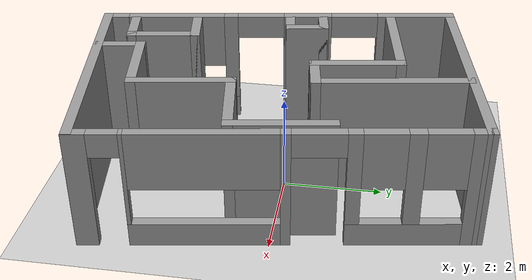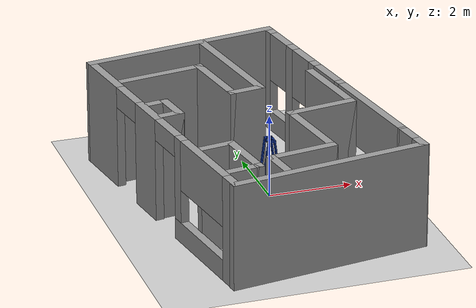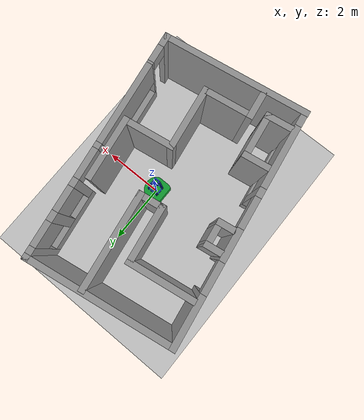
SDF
<sdf version="1.4">
 <world name="default">
  <light name="sun" type="directional">
   <pose>0 0 10 0 -0 0</pose>
   <diffuse>0.8 0.8 0.8 1</diffuse>
   <specular>0.2 0.2 0.2 1</specular>
   <attenuation>
    <range>1000</range>
    <constant>0.9</constant>
    <linear>0.01</linear>
    <quadratic>0.001</quadratic>
   </attenuation>
   <direction>-0.5 0.1 -0.9</direction>
  </light>
  <model name="ground_plane">
   <static>1</static>
   <link name="link">
    <collision name="collision">
     <geometry><plane><normal>0 0 1</normal><size>100 100</size></plane></geometry>
     <surface><friction><ode><mu>100</mu><mu2>50</mu2></ode></friction></surface>
    </collision>
    <visual name="visual">
     <cast_shadows>0</cast_shadows>
     <geometry><plane><normal>0 0 1</normal><size>100 100</size></plane></geometry>
     <material>
      <script><uri>file://media/materials/scripts/gazebo.material</uri><name>Gazebo/Grey</name></script>
     </material>
    </visual>
    <velocity_decay><linear>0</linear><angular>0</angular></velocity_decay>
   </link>
  </model>
  <physics type="ode">
   <max_step_size>0.001</max_step_size>
   <real_time_factor>1</real_time_factor>
   <real_time_update_rate>1000</real_time_update_rate>
   <gravity>0 0 -9.8</gravity>
  </physics>
  <scene><ambient>0.4 0.4 0.4 1</ambient><background>0.7 0.7 0.7 1</background><shadows>1</shadows></scene>
  <spherical_coordinates>
   <surface_model>EARTH_WGS84</surface_model>
   <latitude_deg>0</latitude_deg>
   <longitude_deg>0</longitude_deg>
   <elevation>0</elevation>
   <heading_deg>0</heading_deg>
  </spherical_coordinates>
  <model name="mild">
   <link name="base_link">
    <inertial>
     <mass>5.67</mass>
     <inertia><ixx>0.07</ixx><iyy>0.08</iyy><izz>0.1</izz><ixy>0</ixy><ixz>0</ixz><iyz>0</iyz></inertia>
    </inertial>
    <collision name="collision">
     <geometry><cylinder><radius>0.38</radius><length>0.485</length></cylinder></geometry>
    </collision>
    <collision name="castor_collision">
     <pose>-0.2 0 -0.12 0 -0 0</pose>
     <geometry><sphere><radius>0.04</radius></sphere></geometry>
     <surface><friction><ode><mu>0</mu><mu2>0</mu2><slip1>1</slip1><slip2>1</slip2></ode></friction></surface>
    </collision>
    <visual name="visual">
     <pose>0 0 -0.2 0 0 -1.5708</pose>
     <geometry><mesh><uri>model://mild/meshes/mild.dae</uri></mesh></geometry>
    </visual>
    <sensor name="laser" type="ray">
     <pose>0.39 0 -0.12 0 -0 0</pose>
     <visualize>1</visualize>
     <ray>
      <scan>
       <horizontal>
        <samples>180</samples>
        <resolution>1</resolution>
        <min_angle>-1.5708</min_angle>
        <max_angle>1.5708</max_angle>
       </horizontal>
      </scan>
      <range><min>0.08</min><max>10</max><resolution>0.01</resolution></range>
     </ray>
     <plugin name="laser_controller" filename="libgazebo_ros_laser.so">
      <gaussianNoise>0.005</gaussianNoise>
      <alwaysOn>1</alwaysOn>
      <updateRate>20</updateRate>
      <topicName>scan</topicName>
      <frameName>base_laser</frameName>
     </plugin>
     <update_rate>20</update_rate>
    </sensor>
    <velocity_decay><linear>0</linear><angular>0</angular></velocity_decay>
   </link>
   <pose>-0 -3e-06 0.2425 -0 -0 -0</pose>
   <static>0</static>
  </model>
  <model name="room_experiments">
   <link name="Wall_0">
    <pose>-6.64556 0.829551 0 0 -0 0</pose>
    <visual name="Wall_0_Visual_0">
     <pose>-3.535 0 1.25 0 -0 0</pose>
     <geometry><box><size>0.540007 0.2 2.5</size></box></geometry>
     <material>
      <script><uri>file://media/materials/scripts/gazebo.material</uri><name>Gazebo/Grey</name></script>
     </material>
    </visual>
    <collision name="Wall_0_Collision_0">
     <geometry><box><size>0.540007 0.2 2.5</size></box></geometry>
     <pose>-3.535 0 1.25 0 -0 0</pose>
    </collision>
    <visual name="Wall_0_Visual_1">
     <pose>0.625003 0 1.25 0 -0 0</pose>
     <geometry><box><size>1.04 0.2 2.5</size></box></geometry>
     <material>
      <script><uri>file://media/materials/scripts/gazebo.material</uri><name>Gazebo/Grey</name></script>
     </material>
    </visual>
    <collision name="Wall_0_Collision_1">
     <geometry><box><size>1.04 0.2 2.5</size></box></geometry>
     <pose>0.625003 0 1.25 0 -0 0</pose>
    </collision>
    <visual name="Wall_0_Visual_2">
     <pose>2.975 0 1.25 0 -0 0</pose>
     <geometry><box><size>1.66 0.2 2.5</size></box></geometry>
     <material>
      <script><uri>file://media/materials/scripts/gazebo.material</uri><name>Gazebo/Grey</name></script>
     </material>
    </visual>
    <collision name="Wall_0_Collision_2">
     <geometry><box><size>1.66 0.2 2.5</size></box></geometry>
     <pose>2.975 0 1.25 0 -0 0</pose>
    </collision>
    <visual name="Wall_0_Visual_3">
     <pose>-2.08 0 0.25 0 -0 0</pose>
     <geometry><box><size>2.37 0.2 0.5</size></box></geometry>
     <material>
      <script><uri>file://media/materials/scripts/gazebo.material</uri><name>Gazebo/Grey</name></script>
     </material>
    </visual>
    <collision name="Wall_0_Collision_3">
     <geometry><box><size>2.37 0.2 0.5</size></box></geometry>
     <pose>-2.08 0 0.25 0 -0 0</pose>
    </collision>
    <visual name="Wall_0_Visual_4">
     <pose>-1.045 0 1.5 0 -0 0</pose>
     <geometry><box><size>0.3 0.2 2</size></box></geometry>
     <material>
      <script><uri>file://media/materials/scripts/gazebo.material</uri><name>Gazebo/Grey</name></script>
     </material>
    </visual>
    <collision name="Wall_0_Collision_4">
     <geometry><box><size>0.3 0.2 2</size></box></geometry>
     <pose>-1.045 0 1.5 0 -0 0</pose>
    </collision>
    <visual name="Wall_0_Visual_5">
     <pose>-2.23 0 1.9 0 -0 0</pose>
     <geometry><box><size>2.07 0.2 1.2</size></box></geometry>
     <material>
      <script><uri>file://media/materials/scripts/gazebo.material</uri><name>Gazebo/Grey</name></script>
     </material>
    </visual>
    <collision name="Wall_0_Collision_5">
     <geometry><box><size>2.07 0.2 1.2</size></box></geometry>
     <pose>-2.23 0 1.9 0 -0 0</pose>
    </collision>
    <visual name="Wall_0_Visual_6">
     <pose>1.645 0 2.25 0 -0 0</pose>
     <geometry><box><size>1 0.2 0.5</size></box></geometry>
     <material>
      <script><uri>file://media/materials/scripts/gazebo.material</uri><name>Gazebo/Grey</name></script>
     </material>
    </visual>
    <collision name="Wall_0_Collision_6">
     <geometry><box><size>1 0.2 0.5</size></box></geometry>
     <pose>1.645 0 2.25 0 -0 0</pose>
    </collision>
    <visual name="Wall_0_Visual_7">
     <pose>-0.394997 0 2.25 0 -0 0</pose>
     <geometry><box><size>1 0.2 0.5</size></box></geometry>
     <material>
      <script><uri>file://media/materials/scripts/gazebo.material</uri><name>Gazebo/Grey</name></script>
     </material>
    </visual>
    <collision name="Wall_0_Collision_7">
     <geometry><box><size>1 0.2 0.5</size></box></geometry>
     <pose>-0.394997 0 2.25 0 -0 0</pose>
    </collision>
    <velocity_decay><linear>0</linear><angular>0</angular></velocity_decay>
   </link>
   <link name="Wall_1">
    <collision name="Wall_1_Collision">
     <geometry><box><size>4.81 0.2 2.5</size></box></geometry>
     <pose>0 0 1.25 0 -0 0</pose>
    </collision>
    <visual name="Wall_1_Visual">
     <pose>0 0 1.25 0 -0 0</pose>
     <geometry><box><size>4.81 0.2 2.5</size></box></geometry>
     <material>
      <script><uri>file://media/materials/scripts/gazebo.material</uri><name>Gazebo/Grey</name></script>
     </material>
    </visual>
    <velocity_decay><linear>0</linear><angular>0</angular></velocity_decay>
    <pose>-2.93056 -1.47545 0 0 0 -1.56646</pose>
   </link>
   <link name="Wall_10">
    <collision name="Wall_10_Collision">
     <geometry><box><size>0.59 0.2 2.5</size></box></geometry>
     <pose>0 0 1.25 0 -0 0</pose>
    </collision>
    <visual name="Wall_10_Visual">
     <pose>0 0 1.25 0 -0 0</pose>
     <geometry><box><size>0.59 0.2 2.5</size></box></geometry>
     <material>
      <script><uri>file://media/materials/scripts/gazebo.material</uri><name>Gazebo/Grey</name></script>
     </material>
    </visual>
    <velocity_decay><linear>0</linear><angular>0</angular></velocity_decay>
    <pose>-6.40186 0.464116 0 0 0 -1.5708</pose>
   </link>
   <link name="Wall_11">
    <collision name="Wall_11_Collision">
     <geometry><box><size>0.91 0.2 2.5</size></box></geometry>
     <pose>0 0 1.25 0 -0 0</pose>
    </collision>
    <visual name="Wall_11_Visual">
     <pose>0 0 1.25 0 -0 0</pose>
     <geometry><box><size>0.91 0.2 2.5</size></box></geometry>
     <material>
      <script><uri>file://media/materials/scripts/gazebo.material</uri><name>Gazebo/Grey</name></script>
     </material>
    </visual>
    <velocity_decay><linear>0</linear><angular>0</angular></velocity_decay>
    <pose>-6.04686 0.269116 0 0 -0 0</pose>
   </link>
   <link name="Wall_12">
    <collision name="Wall_12_Collision">
     <geometry><box><size>0.58 0.2 2.5</size></box></geometry>
     <pose>0 0 1.25 0 -0 0</pose>
    </collision>
    <visual name="Wall_12_Visual">
     <pose>0 0 1.25 0 -0 0</pose>
     <geometry><box><size>0.58 0.2 2.5</size></box></geometry>
     <material>
      <script><uri>file://media/materials/scripts/gazebo.material</uri><name>Gazebo/Grey</name></script>
     </material>
    </visual>
    <velocity_decay><linear>0</linear><angular>0</angular></velocity_decay>
    <pose>-5.69186 0.459116 0 0 -0 1.5708</pose>
   </link>
   <link name="Wall_14">
    <collision name="Wall_14_Collision">
     <geometry><box><size>2.17 0.2 2.5</size></box></geometry>
     <pose>0 0 1.25 0 -0 0</pose>
    </collision>
    <visual name="Wall_14_Visual">
     <pose>0 0 1.25 0 -0 0</pose>
     <geometry><box><size>2.17 0.2 2.5</size></box></geometry>
     <material>
      <script><uri>file://media/materials/scripts/gazebo.material</uri><name>Gazebo/Grey</name></script>
     </material>
    </visual>
    <velocity_decay><linear>0</linear><angular>0</angular></velocity_decay>
    <pose>-4.23186 -0.325884 0 0 0 -1.5708</pose>
   </link>
   <link name="Wall_15">
    <collision name="Wall_15_Collision">
     <geometry><box><size>1.92 0.2 2.5</size></box></geometry>
     <pose>0 0 1.25 0 -0 0</pose>
    </collision>
    <visual name="Wall_15_Visual">
     <pose>0 0 1.25 0 -0 0</pose>
     <geometry><box><size>1.92 0.2 2.5</size></box></geometry>
     <material>
      <script><uri>file://media/materials/scripts/gazebo.material</uri><name>Gazebo/Grey</name></script>
     </material>
    </visual>
    <velocity_decay><linear>0</linear><angular>0</angular></velocity_decay>
    <pose>-5.09186 -1.31088 0 0 -0 3.14159</pose>
   </link>
   <link name="Wall_16">
    <collision name="Wall_16_Collision">
     <geometry><box><size>0.9 0.2 2.5</size></box></geometry>
     <pose>0 0 1.25 0 -0 0</pose>
    </collision>
    <visual name="Wall_16_Visual">
     <pose>0 0 1.25 0 -0 0</pose>
     <geometry><box><size>0.9 0.2 2.5</size></box></geometry>
     <material>
      <script><uri>file://media/materials/scripts/gazebo.material</uri><name>Gazebo/Grey</name></script>
     </material>
    </visual>
    <velocity_decay><linear>0</linear><angular>0</angular></velocity_decay>
    <pose>-5.95186 -1.66088 0 0 0 -1.5708</pose>
   </link>
   <link name="Wall_17">
    <collision name="Wall_17_Collision">
     <geometry><box><size>3.16 0.2 2.5</size></box></geometry>
     <pose>0 0 1.25 0 -0 0</pose>
    </collision>
    <visual name="Wall_17_Visual">
     <pose>0 0 1.25 0 -0 0</pose>
     <geometry><box><size>3.16 0.2 2.5</size></box></geometry>
     <material>
      <script><uri>file://media/materials/scripts/gazebo.material</uri><name>Gazebo/Grey</name></script>
     </material>
    </visual>
    <velocity_decay><linear>0</linear><angular>0</angular></velocity_decay>
    <pose>-4.47186 -2.01088 0 0 -0 0</pose>
   </link>
   <link name="Wall_19">
    <collision name="Wall_19_Collision">
     <geometry><box><size>2.1 0.2 2.5</size></box></geometry>
     <pose>0 0 1.25 0 -0 0</pose>
    </collision>
    <visual name="Wall_19_Visual">
     <pose>0 0 1.25 0 -0 0</pose>
     <geometry><box><size>2.1 0.2 2.5</size></box></geometry>
     <material>
      <script><uri>file://media/materials/scripts/gazebo.material</uri><name>Gazebo/Grey</name></script>
     </material>
    </visual>
    <velocity_decay><linear>0</linear><angular>0</angular></velocity_decay>
    <pose>-6.62186 -3.49088 0 0 -0 3.14159</pose>
   </link>
   <link name="Wall_2">
    <pose>-6.64556 -3.78045 0 0 -0 3.14159</pose>
    <visual name="Wall_2_Visual_0">
     <pose>-3.61 0 1.25 0 -0 0</pose>
     <geometry><box><size>0.43 0.2 2.5</size></box></geometry>
     <material>
      <script><uri>file://media/materials/scripts/gazebo.material</uri><name>Gazebo/Grey</name></script>
     </material>
    </visual>
    <collision name="Wall_2_Collision_0">
     <geometry><box><size>0.43 0.2 2.5</size></box></geometry>
     <pose>-3.61 0 1.25 0 -0 0</pose>
    </collision>
    <visual name="Wall_2_Visual_1">
     <pose>-0.11 0 1.25 0 -0 0</pose>
     <geometry><box><size>0.19 0.2 2.5</size></box></geometry>
     <material>
      <script><uri>file://media/materials/scripts/gazebo.material</uri><name>Gazebo/Grey</name></script>
     </material>
    </visual>
    <collision name="Wall_2_Collision_1">
     <geometry><box><size>0.19 0.2 2.5</size></box></geometry>
     <pose>-0.11 0 1.25 0 -0 0</pose>
    </collision>
    <visual name="Wall_2_Visual_2">
     <pose>3.6075 0 1.25 0 -0 0</pose>
     <geometry><box><size>0.435 0.2 2.5</size></box></geometry>
     <material>
      <script><uri>file://media/materials/scripts/gazebo.material</uri><name>Gazebo/Grey</name></script>
     </material>
    </visual>
    <collision name="Wall_2_Collision_2">
     <geometry><box><size>0.435 0.2 2.5</size></box></geometry>
     <pose>3.6075 0 1.25 0 -0 0</pose>
    </collision>
    <visual name="Wall_2_Visual_3">
     <pose>-2.3 0 0.25 0 -0 0</pose>
     <geometry><box><size>2.19 0.2 0.5</size></box></geometry>
     <material>
      <script><uri>file://media/materials/scripts/gazebo.material</uri><name>Gazebo/Grey</name></script>
     </material>
    </visual>
    <collision name="Wall_2_Collision_3">
     <geometry><box><size>2.19 0.2 0.5</size></box></geometry>
     <pose>-2.3 0 0.25 0 -0 0</pose>
    </collision>
    <visual name="Wall_2_Visual_4">
     <pose>1.4025 0 0.25 0 -0 0</pose>
     <geometry><box><size>2.835 0.2 0.5</size></box></geometry>
     <material>
      <script><uri>file://media/materials/scripts/gazebo.material</uri><name>Gazebo/Grey</name></script>
     </material>
    </visual>
    <collision name="Wall_2_Collision_4">
     <geometry><box><size>2.835 0.2 0.5</size></box></geometry>
     <pose>1.4025 0 0.25 0 -0 0</pose>
    </collision>
    <visual name="Wall_2_Visual_5">
     <pose>-2.435 0 1.5 0 -0 0</pose>
     <geometry><box><size>0.32 0.2 2</size></box></geometry>
     <material>
      <script><uri>file://media/materials/scripts/gazebo.material</uri><name>Gazebo/Grey</name></script>
     </material>
    </visual>
    <collision name="Wall_2_Collision_5">
     <geometry><box><size>0.32 0.2 2</size></box></geometry>
     <pose>-2.435 0 1.5 0 -0 0</pose>
    </collision>
    <visual name="Wall_2_Visual_6">
     <pose>-1.34 0 1.5 0 -0 0</pose>
     <geometry><box><size>0.27 0.2 2</size></box></geometry>
     <material>
      <script><uri>file://media/materials/scripts/gazebo.material</uri><name>Gazebo/Grey</name></script>
     </material>
    </visual>
    <collision name="Wall_2_Collision_6">
     <geometry><box><size>0.27 0.2 2</size></box></geometry>
     <pose>-1.34 0 1.5 0 -0 0</pose>
    </collision>
    <visual name="Wall_2_Visual_7">
     <pose>-1.34 0 1.5 0 -0 0</pose>
     <geometry><box><size>0.27 0.2 2</size></box></geometry>
     <material>
      <script><uri>file://media/materials/scripts/gazebo.material</uri><name>Gazebo/Grey</name></script>
     </material>
    </visual>
    <collision name="Wall_2_Collision_7">
     <geometry><box><size>0.27 0.2 2</size></box></geometry>
     <pose>-1.34 0 1.5 0 -0 0</pose>
    </collision>
    <visual name="Wall_2_Visual_8">
     <pose>2.7825 0 1.5 0 -0 0</pose>
     <geometry><box><size>0.075 0.2 2</size></box></geometry>
     <material>
      <script><uri>file://media/materials/scripts/gazebo.material</uri><name>Gazebo/Grey</name></script>
     </material>
    </visual>
    <collision name="Wall_2_Collision_8">
     <geometry><box><size>0.075 0.2 2</size></box></geometry>
     <pose>2.7825 0 1.5 0 -0 0</pose>
    </collision>
    <visual name="Wall_2_Visual_9">
     <pose>-2.995 0 1.9 0 -0 0</pose>
     <geometry><box><size>0.8 0.2 1.2</size></box></geometry>
     <material>
      <script><uri>file://media/materials/scripts/gazebo.material</uri><name>Gazebo/Grey</name></script>
     </material>
    </visual>
    <collision name="Wall_2_Collision_9">
     <geometry><box><size>0.8 0.2 1.2</size></box></geometry>
     <pose>-2.995 0 1.9 0 -0 0</pose>
    </collision>
    <visual name="Wall_2_Visual_10">
     <pose>1.365 0 1.9 0 -0 0</pose>
     <geometry><box><size>2.76 0.2 1.2</size></box></geometry>
     <material>
      <script><uri>file://media/materials/scripts/gazebo.material</uri><name>Gazebo/Grey</name></script>
     </material>
    </visual>
    <collision name="Wall_2_Collision_10">
     <geometry><box><size>2.76 0.2 1.2</size></box></geometry>
     <pose>1.365 0 1.9 0 -0 0</pose>
    </collision>
    <visual name="Wall_2_Visual_11">
     <pose>-1.875 0 1.9 0 -0 0</pose>
     <geometry><box><size>0.8 0.2 1.2</size></box></geometry>
     <material>
      <script><uri>file://media/materials/scripts/gazebo.material</uri><name>Gazebo/Grey</name></script>
     </material>
    </visual>
    <collision name="Wall_2_Collision_11">
     <geometry><box><size>0.8 0.2 1.2</size></box></geometry>
     <pose>-1.875 0 1.9 0 -0 0</pose>
    </collision>
    <visual name="Wall_2_Visual_12">
     <pose>-0.705 0 2.25 0 -0 0</pose>
     <geometry><box><size>1 0.2 0.5</size></box></geometry>
     <material>
      <script><uri>file://media/materials/scripts/gazebo.material</uri><name>Gazebo/Grey</name></script>
     </material>
    </visual>
    <collision name="Wall_2_Collision_12">
     <geometry><box><size>1 0.2 0.5</size></box></geometry>
     <pose>-0.705 0 2.25 0 -0 0</pose>
    </collision>
    <visual name="Wall_2_Visual_13">
     <pose>-0.705 0 2.25 0 -0 0</pose>
     <geometry><box><size>1 0.2 0.5</size></box></geometry>
     <material>
      <script><uri>file://media/materials/scripts/gazebo.material</uri><name>Gazebo/Grey</name></script>
     </material>
    </visual>
    <collision name="Wall_2_Collision_13">
     <geometry><box><size>1 0.2 0.5</size></box></geometry>
     <pose>-0.705 0 2.25 0 -0 0</pose>
    </collision>
    <visual name="Wall_2_Visual_14">
     <pose>3.105 0 2.25 0 -0 0</pose>
     <geometry><box><size>0.57 0.2 0.5</size></box></geometry>
     <material>
      <script><uri>file://media/materials/scripts/gazebo.material</uri><name>Gazebo/Grey</name></script>
     </material>
    </visual>
    <collision name="Wall_2_Collision_14">
     <geometry><box><size>0.57 0.2 0.5</size></box></geometry>
     <pose>3.105 0 2.25 0 -0 0</pose>
    </collision>
    <velocity_decay><linear>0</linear><angular>0</angular></velocity_decay>
   </link>
   <link name="Wall_20">
    <collision name="Wall_20_Collision">
     <geometry><box><size>1.72 0.2 2.5</size></box></geometry>
     <pose>0 0 1.25 0 -0 0</pose>
    </collision>
    <visual name="Wall_20_Visual">
     <pose>0 0 1.25 0 -0 0</pose>
     <geometry><box><size>1.72 0.2 2.5</size></box></geometry>
     <material>
      <script><uri>file://media/materials/scripts/gazebo.material</uri><name>Gazebo/Grey</name></script>
     </material>
    </visual>
    <velocity_decay><linear>0</linear><angular>0</angular></velocity_decay>
    <pose>-7.57186 -2.73088 0 0 -0 1.5708</pose>
   </link>
   <link name="Wall_21">
    <collision name="Wall_21_Collision">
     <geometry><box><size>2.13 0.2 2.5</size></box></geometry>
     <pose>0 0 1.25 0 -0 0</pose>
    </collision>
    <visual name="Wall_21_Visual">
     <pose>0 0 1.25 0 -0 0</pose>
     <geometry><box><size>2.13 0.2 2.5</size></box></geometry>
     <material>
      <script><uri>file://media/materials/scripts/gazebo.material</uri><name>Gazebo/Grey</name></script>
     </material>
    </visual>
    <velocity_decay><linear>0</linear><angular>0</angular></velocity_decay>
    <pose>-8.53686 -1.97088 0 0 -0 3.14159</pose>
   </link>
   <link name="Wall_22">
    <collision name="Wall_22_Collision">
     <geometry><box><size>1.69 0.2 2.5</size></box></geometry>
     <pose>0 0 1.25 0 -0 0</pose>
    </collision>
    <visual name="Wall_22_Visual">
     <pose>0 0 1.25 0 -0 0</pose>
     <geometry><box><size>1.69 0.2 2.5</size></box></geometry>
     <material>
      <script><uri>file://media/materials/scripts/gazebo.material</uri><name>Gazebo/Grey</name></script>
     </material>
    </visual>
    <velocity_decay><linear>0</linear><angular>0</angular></velocity_decay>
    <pose>-9.50186 -1.22588 0 0 -0 1.5708</pose>
   </link>
   <link name="Wall_23">
    <collision name="Wall_23_Collision">
     <geometry><box><size>1.03 0.2 2.5</size></box></geometry>
     <pose>0 0 1.25 0 -0 0</pose>
    </collision>
    <visual name="Wall_23_Visual">
     <pose>0 0 1.25 0 -0 0</pose>
     <geometry><box><size>1.03 0.2 2.5</size></box></geometry>
     <material>
      <script><uri>file://media/materials/scripts/gazebo.material</uri><name>Gazebo/Grey</name></script>
     </material>
    </visual>
    <velocity_decay><linear>0</linear><angular>0</angular></velocity_decay>
    <pose>-9.91686 -0.480884 0 0 -0 3.14159</pose>
   </link>
   <link name="Wall_4">
    <collision name="Wall_4_Collision">
     <geometry><box><size>4.8 0.2 2.5</size></box></geometry>
     <pose>0 0 1.25 0 -0 0</pose>
    </collision>
    <visual name="Wall_4_Visual">
     <pose>0 0 1.25 0 -0 0</pose>
     <geometry><box><size>4.8 0.2 2.5</size></box></geometry>
     <material>
      <script><uri>file://media/materials/scripts/gazebo.material</uri><name>Gazebo/Grey</name></script>
     </material>
    </visual>
    <velocity_decay><linear>0</linear><angular>0</angular></velocity_decay>
    <pose>-10.3706 -1.46045 0 0 0 -1.5708</pose>
   </link>
   <link name="Wall_6">
    <collision name="Wall_6_Collision">
     <geometry><box><size>0.9 0.2 2.5</size></box></geometry>
     <pose>0 0 1.25 0 -0 0</pose>
    </collision>
    <visual name="Wall_6_Visual">
     <pose>0 0 1.25 0 -0 0</pose>
     <geometry><box><size>0.9 0.2 2.5</size></box></geometry>
     <material>
      <script><uri>file://media/materials/scripts/gazebo.material</uri><name>Gazebo/Grey</name></script>
     </material>
    </visual>
    <velocity_decay><linear>0</linear><angular>0</angular></velocity_decay>
    <pose>-9.74186 0.309116 0 0 0 -1.5708</pose>
   </link>
   <link name="Wall_7">
    <collision name="Wall_7_Collision">
     <geometry><box><size>1.53 0.2 2.5</size></box></geometry>
     <pose>0 0 1.25 0 -0 0</pose>
    </collision>
    <visual name="Wall_7_Visual">
     <pose>0 0 1.25 0 -0 0</pose>
     <geometry><box><size>1.53 0.2 2.5</size></box></geometry>
     <material>
      <script><uri>file://media/materials/scripts/gazebo.material</uri><name>Gazebo/Grey</name></script>
     </material>
    </visual>
    <velocity_decay><linear>0</linear><angular>0</angular></velocity_decay>
    <pose>-9.07686 -0.040884 0 0 -0 0</pose>
   </link>
   <link name="Wall_8">
    <collision name="Wall_8_Collision">
     <geometry><box><size>0.88 0.2 2.5</size></box></geometry>
     <pose>0 0 1.25 0 -0 0</pose>
    </collision>
    <visual name="Wall_8_Visual">
     <pose>0 0 1.25 0 -0 0</pose>
     <geometry><box><size>0.88 0.2 2.5</size></box></geometry>
     <material>
      <script><uri>file://media/materials/scripts/gazebo.material</uri><name>Gazebo/Grey</name></script>
     </material>
    </visual>
    <velocity_decay><linear>0</linear><angular>0</angular></velocity_decay>
    <pose>-8.41186 0.299116 0 0 -0 1.5708</pose>
   </link>
   <static>1</static>
   <pose>-2.91768 6.17816 0 0 -0 1.72247</pose>
  </model>
 </world>
</sdf>
